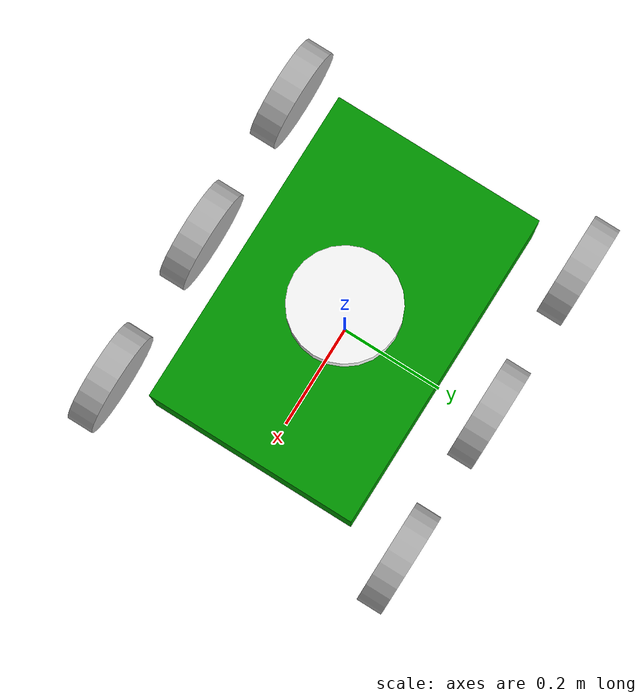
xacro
<?xml version="1.0" ?>

<robot xmlns:xacro="http://www.ros.org/wiki/xacro">

    <xacro:include filename="rover_inertia_macros.xacro" />

    <material name="grey">
        <color rgba="0.7 0.7 0.7 1" />
    </material>

    <material name="green">
        <color rgba="0 0.6 0 1" />
    </material>

    <material name="white">
        <color rgba="1 1 1 1" />
    </material>

    <!--   BASE link       -->
    <link name="base_link">

    </link>

    <!--   CHASSIS   -->
    <link name="chassis">
        <visual>
            <geometry>
                <box size="0.6 0.4 0.2" />                  <!--Dimensiones base-->
            </geometry>
            <material name="green" />
        </visual>

        <collisions>
            <geometry>
                <box size="0.6 0.4 0.2" />                  <!--Dimensiones base-->
            </geometry>
        </collisions>

        <xacro:inertial_box mass="0.5" x="0.6" y="0.4" z="0.2" >
            <origin xyz="0 0 0" rpy="0 0 0" />
        </xacro:inertial_box>
    </link>

    <gazebo reference="chassis">
        <material>Gazebo/White</material>
    </gazebo>

    <!--    LIDAR   -->
    <link name="lidar_link">
        <visual>
            <geometry>
                <cylinder radius="0.1" length="0.05"/>
            </geometry>
            <origin xyz="0 0 0" rpy="0 0 0" />
            <material name="white" />
        </visual>

        <collision>
            <geometry>
                <cylinder radius="0.1" length="0.05"/>
            </geometry>
            <origin xyz="0 0 0" rpy="0 0 0" />
        </collision>

        <xacro:inertial_cylinder mass="0.1" length="0.05" radius="0.1">
            <origin xyz="0 0 0" rpy="0 0 0" />
        </xacro:inertial_cylinder>
    </link>

    <gazebo reference="lidar_link">
        <material>Gazebo/Blue</material>
    </gazebo>

    <!--    RUEDAS   -->                        <!--     Definir dimensiones ruedas         -->
    <link name="front_right_wheel">
        <visual>
            <geometry>
                <cylinder radius="0.1" length="0.05"/>
            </geometry>
            <origin xyz="0 0 0" rpy="${pi/2} 0 0" />
            <material name="grey" />
        </visual>

        <collision>
            <geometry>
                <cylinder radius="0.1" length="0.05"/>
            </geometry>
            <origin xyz="0 0 0" rpy="${pi/2} 0 0" />
        </collision>

        <xacro:inertial_cylinder mass="0.1" length="0.05" radius="0.1">
            <origin xyz="0 0 0" rpy="0 0 0" />
        </xacro:inertial_cylinder>
    </link>

    <gazebo reference="front_right_wheel">
        <material>Gazebo/Grey</material>
    </gazebo>

    <link name="middle_right_wheel">
        <visual>
            <geometry>
                <cylinder radius="0.1" length="0.05"/>
            </geometry>
            <origin xyz="0 0 0" rpy="${pi/2} 0 0" />
            <material name="grey" />
        </visual>

        <collision>
            <geometry>
                <cylinder radius="0.1" length="0.05"/>
            </geometry>
            <origin xyz="0 0 0" rpy="${pi/2} 0 0" />
        </collision>

        <xacro:inertial_cylinder mass="0.1" length="0.05" radius="0.1">
            <origin xyz="0 0 0" rpy="0 0 0" />
        </xacro:inertial_cylinder>
    </link>

    <gazebo reference="middle_right_wheel">
        <material>Gazebo/Grey</material>
    </gazebo>

    <link name="rear_right_wheel">
        <visual>
            <geometry>
                <cylinder radius="0.1" length="0.05"/>
            </geometry>
            <origin xyz="0 0 0" rpy="${pi/2} 0 0" />
            <material name="grey" />
        </visual>

        <collision>
            <geometry>
                <cylinder radius="0.1" length="0.05"/>
            </geometry>
            <origin xyz="0 0 0" rpy="${pi/2} 0 0" />
        </collision>

        <xacro:inertial_cylinder mass="0.1" length="0.05" radius="0.1">
            <origin xyz="0 0 0" rpy="0 0 0" />
        </xacro:inertial_cylinder>
    </link>

    <gazebo reference="rear_right_wheel">
        <material>Gazebo/Grey</material>
    </gazebo>

    <link name="front_left_wheel">
        <visual>
            <geometry>
                <cylinder radius="0.1" length="0.05"/>
            </geometry>
            <origin xyz="0 0 0" rpy="${pi/2} 0 0" />
            <material name="grey" />
        </visual>

        <collision>
            <geometry>
                <cylinder radius="0.1" length="0.05"/>
            </geometry>
            <origin xyz="0 0 0" rpy="${pi/2} 0 0" />
        </collision>

        <xacro:inertial_cylinder mass="0.1" length="0.05" radius="0.1">
            <origin xyz="0 0 0" rpy="0 0 0" />
        </xacro:inertial_cylinder>
    </link>

    <gazebo reference="front_left_wheel">
        <material>Gazebo/Grey</material>
    </gazebo>

    <link name="middle_left_wheel">
        <visual>
            <geometry>
                <cylinder radius="0.1" length="0.05"/>
            </geometry>
            <origin xyz="0 0 0" rpy="${pi/2} 0 0" />
            <material name="grey" />
        </visual>

        <collision>
            <geometry>
                <cylinder radius="0.1" length="0.05"/>
            </geometry>
            <origin xyz="0 0 0" rpy="${pi/2} 0 0" />
        </collision>

        <xacro:inertial_cylinder mass="0.1" length="0.05" radius="0.1">
            <origin xyz="0 0 0" rpy="0 0 0" />
        </xacro:inertial_cylinder>
    </link>

    <gazebo reference="middle_left_wheel">
        <material>Gazebo/Grey</material>
    </gazebo>

    <link name="rear_left_wheel">
        <visual>
            <geometry>
                <cylinder radius="0.1" length="0.05"/>
            </geometry>
            <origin xyz="0 0 0" rpy="${pi/2} 0 0" />
            <material name="grey" />
        </visual>

        <collision>
            <geometry>
                <cylinder radius="0.1" length="0.05"/>
            </geometry>
            <origin xyz="0 0 0" rpy="${pi/2} 0 0" />
        </collision>

        <xacro:inertial_cylinder mass="0.1" length="0.05" radius="0.1">
            <origin xyz="0 0 0" rpy="0 0 0" />
        </xacro:inertial_cylinder>
    </link>

    <gazebo reference="rear_left_wheel">
        <material>Gazebo/Grey</material>
    </gazebo>

    <!--    STEERING    -->
    <link name="front_right_steering">
        <visual>
            <geometry>
                <cylinder radius="0.00001" length="0.00005"/>
            </geometry>
        </visual>

        <collision>
            <geometry>
                <cylinder radius="0.00001" length="0.00005"/>
            </geometry>
        </collision>

        <xacro:inertial_cylinder mass="0.00001" length="0.000005" radius="0.00001">
            <origin xyz="0 0 0" rpy="0 0 0" />
        </xacro:inertial_cylinder>
    </link>

    <link name="rear_right_steering">
        <visual>
            <geometry>
                <cylinder radius="0.00001" length="0.00005"/>
            </geometry>
        </visual>

        <collision>
            <geometry>
                <cylinder radius="0.00001" length="0.00005"/>
            </geometry>
        </collision>

        <xacro:inertial_cylinder mass="0.00001" length="0.000005" radius="0.00001">
            <origin xyz="0 0 0" rpy="0 0 0" />
        </xacro:inertial_cylinder>
    </link>

    <link name="front_left_steering">
        <visual>
            <geometry>
                <cylinder radius="0.00001" length="0.00005"/>
            </geometry>
        </visual>

        <collision>
            <geometry>
                <cylinder radius="0.00001" length="0.00005"/>
            </geometry>
        </collision>

        <xacro:inertial_cylinder mass="0.00001" length="0.000005" radius="0.00001">
            <origin xyz="0 0 0" rpy="0 0 0" />
        </xacro:inertial_cylinder>
    </link>

    <link name="rear_left_steering">
        <visual>
            <geometry>
                <cylinder radius="0.00001" length="0.00005"/>
            </geometry>
        </visual>

        <collision>
            <geometry>
                <cylinder radius="0.00001" length="0.00005"/>
            </geometry>
        </collision>

        <xacro:inertial_cylinder mass="0.00001" length="0.000005" radius="0.00001">
            <origin xyz="0 0 0" rpy="0 0 0" />
        </xacro:inertial_cylinder>
    </link>

    <link name="steering_wheel">
        <visual>
            <geometry>
                <cylinder radius="0.00001" length="0.00005"/>
            </geometry>
        </visual>

        <collision>
            <geometry>
                <cylinder radius="0.00001" length="0.00005"/>
            </geometry>
        </collision>

        <xacro:inertial_cylinder mass="0.00001" length="0.000005" radius="0.00001">
            <origin xyz="0 0 0" rpy="0 0 0" />
        </xacro:inertial_cylinder>
    </link>

    <!--     JOINTS                   ### MEDIDAS A DEFINIR ###-->
    <joint name="base_link_joint" type="fixed">
        <parent link="base_link" />
        <child link="chassis" />
        <origin xyz="0 0 0.25" rpy="0 0 0" />
    </joint>

    <joint name="base_lidar_joint" type="fixed">
        <parent link="chassis" />
        <child link="lidar_link" />
        <origin xyz="0 0 0.125" rpy="0 0 0" />
    </joint>

    <joint name="steering_wheel_joint" type="revolute">
        <parent link="chassis" />
        <child link="steering_wheel" />
        <origin xyz="0 0 0.30" rpy="0 0 0" /> <!-- Cuanto sobresale sobre el eje z-->
        <axis xyz="0 0 1" />
        <limit lower="-1.57" upper="1.57" effort="10" velocity="1" />
    </joint>

    <joint name="front_right_steering_joint" type="revolute">
        <parent link="chassis" />
        <child link="front_right_steering" />
        <origin xyz="-0.3 0.3 -0.15" rpy="0 0 0" /> <!-- Cuanto sobresale sobre el eje z-->
        <axis xyz="0 0 1" />
        <limit lower="-1.57" upper="1.57" effort="10" velocity="1" />
    </joint>

    <joint name="front_right_wheel_joint" type="continuous">
        <parent link="front_right_steering" />
        <child link="front_right_wheel" />
        <origin xyz="0 0 0" rpy="0 0 0" />  <!-- Cuanto sobresale sobre el eje z-->
        <axis xyz="0 1 0" />
    </joint>

    <joint name="middle_right_wheel_joint" type="continuous">
        <parent link="chassis" />
        <child link="middle_right_wheel" />
        <origin xyz="0 0.3 -0.15" rpy="0 0 0" />
        <axis xyz="0 1 0" />
    </joint>

    <joint name="rear_right_steering_joint" type="revolute">
        <parent link="chassis" />
        <child link="rear_right_steering" />
        <origin xyz="0.30 0.3 -0.15" rpy="0 0 0" />
        <axis xyz="0 0 1" />
        <limit lower="-1.57" upper="1.57" effort="10" velocity="1" />
    </joint>

    <joint name="rear_right_wheel_joint" type="continuous">
        <parent link="rear_right_steering" />
        <child link="rear_right_wheel" />
        <origin xyz="0 0 0" rpy="0 0 0" />
        <axis xyz="0 1 0" />
    </joint>

    <joint name="front_left_steering_joint" type="revolute">
        <parent link="chassis" />
        <child link="front_left_steering" />
        <origin xyz="-0.30 -0.3 -0.15" rpy="0 0 0" />
        <axis xyz="0 0 1" />
        <limit lower="-1.57" upper="1.57" effort="10" velocity="1" />
    </joint>

    <joint name="front_left_wheel_joint" type="continuous">
        <parent link="front_left_steering" />
        <child link="front_left_wheel" />
        <origin xyz="0 0 0" rpy="0 0 0" />
        <axis xyz="0 1 0" />
    </joint>

    <joint name="middle_left_wheel_joint" type="continuous">
        <parent link="chassis" />
        <child link="middle_left_wheel" />
        <origin xyz="0 -0.3 -0.15" rpy="0 0 0" />
        <axis xyz="0 1 0" />
    </joint>

    <joint name="rear_left_steering_joint" type="revolute">
        <parent link="chassis" />
        <child link="rear_left_steering" />
        <origin xyz="0.30 -0.3 -0.15" rpy="0 0 0" />
        <axis xyz="0 0 1" />
        <limit lower="-1.57" upper="1.57" effort="10" velocity="1" />
    </joint>

    <joint name="rear_left_wheel_joint" type="continuous">
        <parent link="rear_left_steering" />
        <child link="rear_left_wheel" />
        <origin xyz="0 0 0" rpy="0 0 0" />
        <axis xyz="0 1 0" />
    </joint>

</robot>
